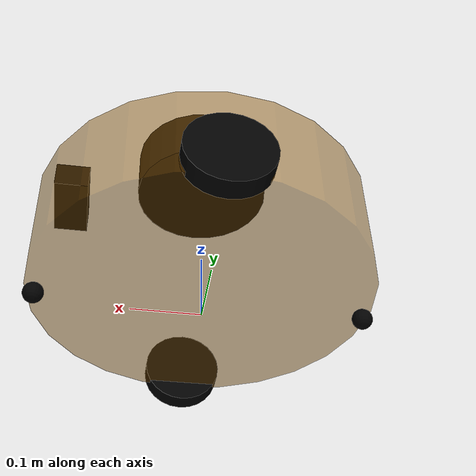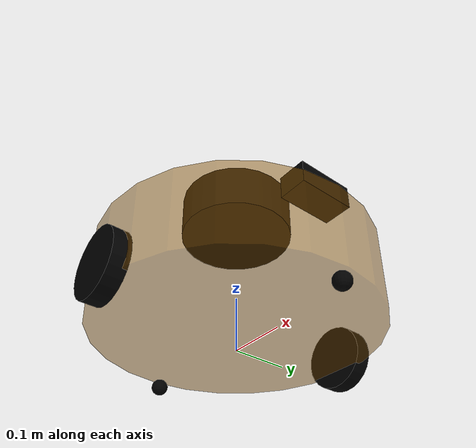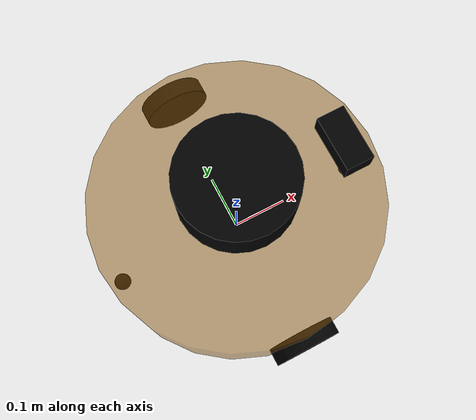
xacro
<!-- 组合小车底盘与摄像头 -->
<robot name="zxcar" xmlns:xacro="http://wiki.ros.org/xacro">

	<xacro:arg name="car_name" default="zxcar" />
    <xacro:arg name="color_r" default="0.5" />
    <xacro:arg name="color_g" default="0.5" />
    <xacro:arg name="color_b" default="0.5" />
    <xacro:arg name="color_a" default="1.0" />

    <xacro:include filename="macro.xacro" />
    <xacro:include filename="base.xacro" />
    <xacro:include filename="camara.xacro" />
    <xacro:include filename="laser.xacro" />
    <xacro:include filename="move.xacro" />
</robot>

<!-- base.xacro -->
<!--
    使用 xacro 优化 URDF 版的小车底盘实现：

    实现思路:
    1.将一些常量、变量封装为 xacro:property
      比如:PI 值、小车底盘半径、离地间距、车轮半径、宽度 ....
    2.使用 宏 封装驱动轮以及支撑轮实现，调用相关宏生成驱动轮与支撑轮

-->
<!-- 根标签，必须声明 xmlns:xacro -->
<robot name="my_base" xmlns:xacro="http://www.ros.org/wiki/xacro">
    <!-- 封装变量、常量 -->
    <!-- PI 值设置精度需要高一些，否则后续车轮翻转量计算时，可能会出现肉眼不能察觉的车轮倾斜，从而导致模型抖动 -->
    <xacro:property name="PI" value="3.1415926"/>
    <!-- 宏:黑色设置 -->
    <material name="black">
        <color rgba="0.0 0.0 0.0 1.0" />
    </material>
    <!-- 底盘属性 -->
    <xacro:property name="base_footprint_radius" value="0.001" /> <!-- base_footprint 半径  -->
    <xacro:property name="base_link_radius" value="0.25" /> <!-- base_link 半径 -->
    <xacro:property name="base_link_length" value="0.15" /> <!-- base_link 长 -->
    <xacro:property name="earth_space" value="0.03" /> <!-- 离地间距 -->
    <xacro:property name="base_link_m" value="1" /> <!-- 质量  -->

    <!-- 底盘 -->
    <link name="base_footprint">
      <visual>
        <geometry>
          <sphere radius="${base_footprint_radius}" />
        </geometry>
      </visual>
    </link>

    <link name="base_link">
      <visual>
        <geometry>
          <cylinder radius="${base_link_radius}" length="${base_link_length}" />
        </geometry>
        <origin xyz="0 0 0" rpy="0 0 0" />
        <material name="yellow">
          <color rgba="0.5 0.3 0.0 0.5" />
        </material>
      </visual>
      <collision>
        <geometry>
          <cylinder radius="${base_link_radius}" length="${base_link_length}" />
        </geometry>
        <origin xyz="0 0 0" rpy="0 0 0" />
      </collision>
      <xacro:cylinder_inertial_matrix m="${base_link_m}" r="${base_link_radius}" h="${base_link_length}" />

    </link>

    <joint name="base_link2base_footprint" type="fixed">
      <parent link="base_footprint" />
      <child link="base_link" />
      <origin xyz="0 0 ${earth_space + base_link_length / 2 }" />
    </joint>
    <gazebo reference="base_link">
        <visual>
            <plugin name="set_model_color_plugin" filename="libset_model_color_plugin.so">
                <robotNamespace>$(arg car_name)</robotNamespace>
                <serviceName>baselink_color</serviceName>
                <color>$(arg color_r) $(arg color_g) $(arg color_b) $(arg color_a)</color>
            </plugin>
        </visual>
    </gazebo>

    <!-- 驱动轮 -->
    <!-- 驱动轮属性 -->
    <xacro:property name="wheel_radius" value="0.06" /><!-- 半径 -->
    <xacro:property name="wheel_length" value="0.03" /><!-- 宽度 -->
    <xacro:property name="wheel_m" value="0.1" /> <!-- 质量  -->

    <!-- 驱动轮宏实现 -->
    <xacro:macro name="add_wheels" params="name flag">
      <link name="${name}_wheel">
        <visual>
          <geometry>
            <cylinder radius="${wheel_radius}" length="${wheel_length}" />
          </geometry>
          <origin xyz="0.0 0.0 0.0" rpy="${PI / 2} 0.0 0.0" />
          <material name="black" />
        </visual>
        <collision>
          <geometry>
            <cylinder radius="${wheel_radius}" length="${wheel_length}" />
          </geometry>
          <origin xyz="0.0 0.0 0.0" rpy="${PI / 2} 0.0 0.0" />
        </collision>
        <xacro:cylinder_inertial_matrix m="${wheel_m}" r="${wheel_radius}" h="${wheel_length}" />

      </link>

      <joint name="${name}_wheel2base_link" type="continuous">
        <parent link="base_link" />
        <child link="${name}_wheel" />
        <origin xyz="0 ${flag * base_link_radius} ${-(earth_space + base_link_length / 2 - wheel_radius) }" />
        <axis xyz="0 1 0" />
      </joint>

      <gazebo reference="${name}_wheel">
        <material>Gazebo/Red</material>
      </gazebo>

    </xacro:macro>
    <xacro:add_wheels name="left" flag="1" />
    <xacro:add_wheels name="right" flag="-1" />

    <!-- 支撑轮 -->
    <!-- 支撑轮属性 -->
    <xacro:property name="support_wheel_radius" value="${earth_space/2}" /> <!-- 支撑轮半径 -->
    <xacro:property name="support_wheel_m" value="0.08" /> <!-- 质量  -->

    <!-- 支撑轮宏 -->
    <xacro:macro name="add_support_wheel" params="name flag" >
      <link name="${name}_wheel">
        <visual>
            <geometry>
                <sphere radius="${support_wheel_radius}" />
            </geometry>
            <origin xyz="0 0 0" rpy="0 0 0" />
            <material name="black" />
        </visual>
        <collision>
            <geometry>
                <sphere radius="${support_wheel_radius}" />
            </geometry>
            <origin xyz="0 0 0" rpy="0 0 0" />
        </collision>
        <xacro:sphere_inertial_matrix m="${support_wheel_m}" r="${support_wheel_radius}" />
      </link>

      <joint name="${name}_wheel2base_link" type="continuous">
          <parent link="base_link" />
          <child link="${name}_wheel" />
          <origin xyz="${flag * (base_link_radius - support_wheel_radius)} 0 ${-(base_link_length / 2 + earth_space / 2)}" />
          <axis xyz="1 1 1" />
      </joint>
      <gazebo reference="${name}_wheel">
        <material>Gazebo/Red</material>
      </gazebo>
    </xacro:macro>

    <xacro:add_support_wheel name="front" flag="1" />
    <xacro:add_support_wheel name="back" flag="-1" />

</robot>

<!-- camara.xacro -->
<!-- 摄像头相关的 xacro 文件 -->
<robot name="my_camera" xmlns:xacro="http://wiki.ros.org/xacro">
    <!-- 摄像头属性 -->
    <xacro:property name="camera_length" value="0.05" /> <!-- 摄像头长度(x) -->
    <xacro:property name="camera_width" value="0.1" /> <!-- 摄像头宽度(y) -->
    <xacro:property name="camera_height" value="0.04" /> <!-- 摄像头高度(z) -->
    <xacro:property name="camera_x" value="0.2" /> <!-- 摄像头安装的x坐标 -->
    <xacro:property name="camera_y" value="0.0" /> <!-- 摄像头安装的y坐标 -->
    <xacro:property name="camera_z" value="${base_link_length / 2 + camera_height / 2}" /> <!-- 摄像头安装的z坐标:底盘高度 / 2 + 摄像头高度 / 2  -->

    <xacro:property name="camera_m" value="0.01" /> <!-- 摄像头质量 -->

    <!-- 摄像头关节以及link -->
    <link name="camera">
        <visual>
            <geometry>
                <box size="${camera_length} ${camera_width} ${camera_height}" />
            </geometry>
            <origin xyz="0.0 0.0 0.0" rpy="0.0 0.0 0.0" />
            <material name="black" />
        </visual>
        <collision>
            <geometry>
                <box size="${camera_length} ${camera_width} ${camera_height}" />
            </geometry>
            <origin xyz="0.0 0.0 0.0" rpy="0.0 0.0 0.0" />
        </collision>
        <xacro:Box_inertial_matrix m="${camera_m}" l="${camera_length}" w="${camera_width}" h="${camera_height}" />
    </link>

    <joint name="camera2base_link" type="fixed">
        <parent link="base_link" />
        <child link="camera" />
        <origin xyz="${camera_x} ${camera_y} ${camera_z}" />
    </joint>
    <gazebo reference="camera">
        <material>Gazebo/Blue</material>
    </gazebo>
</robot>

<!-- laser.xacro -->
<!--
    小车底盘添加雷达
-->
<robot name="my_laser" xmlns:xacro="http://wiki.ros.org/xacro">

    <!-- 雷达支架 -->
    <xacro:property name="support_length" value="0.05" /> <!-- 支架长度 -->
    <xacro:property name="support_radius" value="0.01" /> <!-- 支架半径 -->
    <xacro:property name="support_x" value="0.0" /> <!-- 支架安装的x坐标 -->
    <xacro:property name="support_y" value="0.0" /> <!-- 支架安装的y坐标 -->
    <xacro:property name="support_z" value="${base_link_length / 2 + support_length / 2}" /> <!-- 支架安装的z坐标:底盘高度 / 2 + 支架高度 / 2  -->

    <xacro:property name="support_m" value="0.02" /> <!-- 支架质量 -->

    <link name="support">
        <visual>
            <geometry>
                <cylinder radius="${support_radius}" length="${support_length}" />
            </geometry>
            <origin xyz="0.0 0.0 0.0" rpy="0.0 0.0 0.0" />
            <material name="red">
                <color rgba="0.8 0.2 0.0 0.8" />
            </material>
        </visual>

        <collision>
            <geometry>
                <cylinder radius="${support_radius}" length="${support_length}" />
            </geometry>
            <origin xyz="0.0 0.0 0.0" rpy="0.0 0.0 0.0" />
        </collision>

        <xacro:cylinder_inertial_matrix m="${support_m}" r="${support_radius}" h="${support_length}" />

    </link>

    <joint name="support2base_link" type="fixed">
        <parent link="base_link" />
        <child link="support" />
        <origin xyz="${support_x} ${support_y} ${support_z}" />
    </joint>

    <gazebo reference="support">
        <material>Gazebo/White</material>
    </gazebo>

    <!-- 雷达属性 -->
    <xacro:property name="laser_length" value="0.08" /> <!-- 雷达长度 -->
    <xacro:property name="laser_radius" value="0.1" /> <!-- 雷达半径 -->
    <xacro:property name="laser_check_radius" value="0.23" /> <!-- 雷达半径 -->
    <xacro:property name="laser_x" value="0.0" /> <!-- 雷达安装的x坐标 -->
    <xacro:property name="laser_y" value="0.0" /> <!-- 雷达安装的y坐标 -->
    <xacro:property name="laser_z" value="${support_length / 2 + laser_length / 2}" /> <!-- 雷达安装的z坐标:支架高度 / 2 + 雷达高度 / 2  -->

    <xacro:property name="laser_m" value="0.1" /> <!-- 雷达质量 -->

    <!-- 雷达关节以及link -->
    <link name="laser">
        <visual>
            <geometry>
                <cylinder radius="${laser_radius}" length="${laser_length}" />
            </geometry>
            <origin xyz="0.0 0.0 0.0" rpy="0.0 0.0 0.0" />
            <material name="black" />
        </visual>
        <collision>
            <geometry>
                <cylinder radius="${laser_check_radius}" length="${laser_length}" />
            </geometry>
            <origin xyz="0.0 0.0 0.0" rpy="0.0 0.0 0.0" />
        </collision>
        <xacro:cylinder_inertial_matrix m="${laser_m}" r="${laser_radius}" h="${laser_length}" />
    </link>

    <joint name="laser2support" type="fixed">
        <parent link="support" />
        <child link="laser" />
        <origin xyz="${laser_x} ${laser_y} ${laser_z}" />
    </joint>
    <gazebo reference="laser">
        <material>Gazebo/Black</material>
    </gazebo>

  <!-- 雷达插件 -->
  <gazebo reference="laser">
    <sensor type="ray" name="rplidar">
      <pose>0 0 0 0 0 0</pose>
      <visualize>false</visualize>
      <update_rate>5.5</update_rate>
      <ray>
        <scan>
          <horizontal>
            <samples>150</samples>
            <resolution>1</resolution>
            <min_angle>-1.308</min_angle>
            <max_angle>1.308</max_angle>
          </horizontal>
        </scan>
        <range>
          <min>${laser_check_radius+0.02}</min>
          <max>5.0</max>
          <resolution>0.01</resolution>
        </range>
        <noise>
          <type>gaussian</type>
          <mean>0.0</mean>
          <stddev>0.01</stddev>
        </noise>
      </ray>
      <plugin name="gazebo_rplidar" filename="libgazebo_ros_laser.so">
        <topicName>scan</topicName>
        <frameName>$(arg car_name)/laser</frameName>
      </plugin>
    </sensor>
  </gazebo>

</robot>
